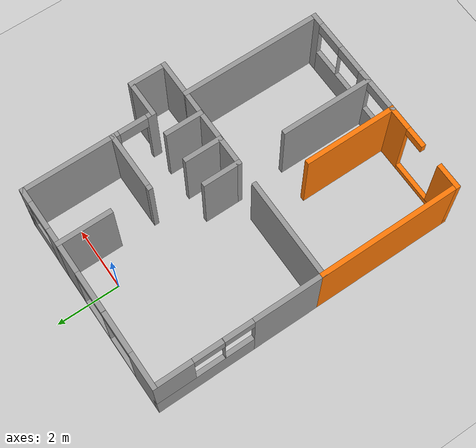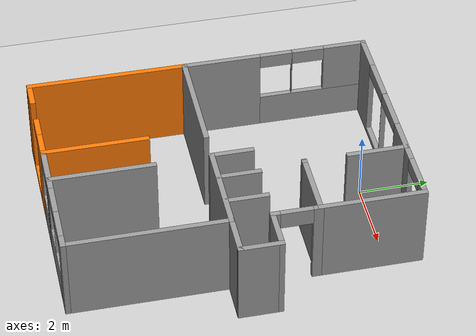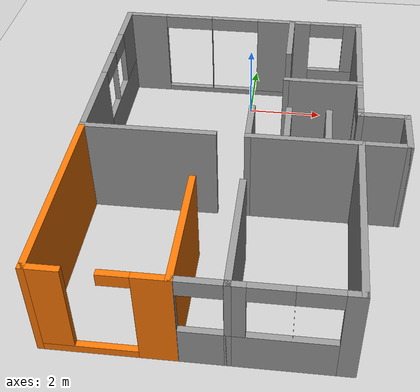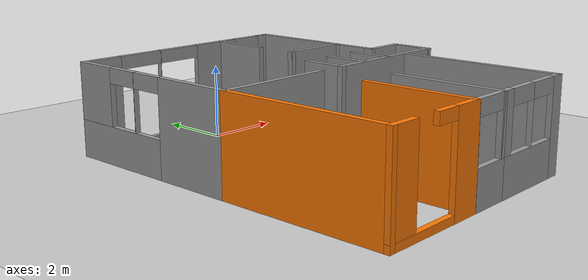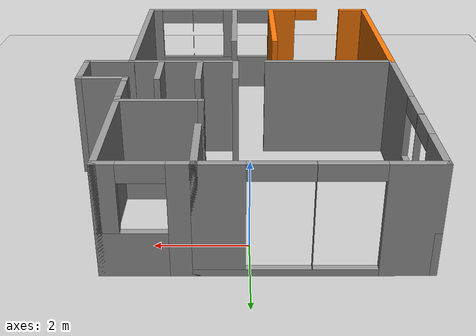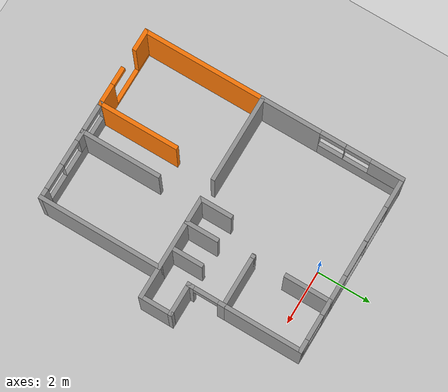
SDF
<sdf version="1.6">
 <world name="default">
  <light name="sun" type="directional">
   <pose>0 0 10 0 -0 0</pose>
   <diffuse>0.8 0.8 0.8 1</diffuse>
   <specular>0.1 0.1 0.1 1</specular>
   <attenuation>
    <range>1000</range>
    <constant>0.9</constant>
    <linear>0.01</linear>
    <quadratic>0.001</quadratic>
   </attenuation>
   <direction>-0.5 0.5 -1</direction>
  </light>
  <model name="ground_plane">
   <static>1</static>
   <link name="link">
    <collision name="collision">
     <geometry><plane><normal>0 0 1</normal><size>100 100</size></plane></geometry>
     <surface><friction><ode><mu>100</mu><mu2>50</mu2></ode></friction></surface>
    </collision>
    <visual name="visual">
     <cast_shadows>0</cast_shadows>
     <geometry><plane><normal>0 0 1</normal><size>100 100</size></plane></geometry>
     <material>
      <script><uri>file://media/materials/scripts/gazebo.material</uri><name>Gazebo/Grey</name></script>
     </material>
    </visual>
   </link>
  </model>
  <gravity>0 0 -9.8</gravity>
  <magnetic_field>6e-06 2.3e-05 -4.2e-05</magnetic_field>
  <atmosphere type="adiabatic"/>
  <physics name="default_physics" default="0" type="ode">
   <max_step_size>0.001</max_step_size>
   <real_time_factor>1</real_time_factor>
   <real_time_update_rate>1000</real_time_update_rate>
  </physics>
  <scene><ambient>0.4 0.4 0.4 1</ambient><background>0.7 0.7 0.7 1</background><shadows>1</shadows></scene>
  <spherical_coordinates>
   <surface_model>EARTH_WGS84</surface_model>
   <latitude_deg>0</latitude_deg>
   <longitude_deg>0</longitude_deg>
   <elevation>0</elevation>
   <heading_deg>0</heading_deg>
  </spherical_coordinates>
  <model name="Berkach">
   <pose>0.204803 -3.91895 0 0 -0 0</pose>
   <link name="Wall_0">
    <collision name="Wall_0_Collision">
     <geometry><box><size>4.6 0.15 2.5</size></box></geometry>
     <pose>0 0 1.25 0 -0 0</pose>
    </collision>
    <visual name="Wall_0_Visual">
     <pose>0 0 1.25 0 -0 0</pose>
     <geometry><box><size>4.6 0.15 2.5</size></box></geometry>
     <material>
      <script><uri>file://media/materials/scripts/gazebo.material</uri><name>Gazebo/Grey</name></script>
      <ambient>1 1 1 1</ambient>
     </material>
    </visual>
    <pose>2.7 -2.625 0 0 0 -1.5708</pose>
   </link>
   <link name="Wall_11">
    <collision name="Wall_11_Collision">
     <geometry><box><size>3 0.15 2.5</size></box></geometry>
     <pose>0 0 1.25 0 -0 0</pose>
    </collision>
    <visual name="Wall_11_Visual">
     <pose>0 0 1.25 0 -0 0</pose>
     <geometry><box><size>3 0.15 2.5</size></box></geometry>
     <material>
      <script><uri>file://media/materials/scripts/gazebo.material</uri><name>Gazebo/Grey</name></script>
      <ambient>0.996078 0.47451 0.0196078 1</ambient>
     </material>
    </visual>
    <pose>-0.95 -3.425 0 0 0 -1.5708</pose>
   </link>
   <link name="Wall_12">
    <pose>-2.375 -4.85 0 0 -0 3.14159</pose>
    <visual name="Wall_12_Visual_0">
     <pose>-1.0895 0 1.25 0 -0 0</pose>
     <geometry><box><size>0.820991 0.15 2.5</size></box></geometry>
     <material>
      <script><uri>file://media/materials/scripts/gazebo.material</uri><name>Gazebo/Grey</name></script>
      <ambient>0.996078 0.47451 0.0196078 1</ambient>
     </material>
    </visual>
    <collision name="Wall_12_Collision_0">
     <geometry><box><size>0.820991 0.15 2.5</size></box></geometry>
     <pose>-1.0895 0 1.25 0 -0 0</pose>
    </collision>
    <visual name="Wall_12_Visual_1">
     <pose>0.410495 0 0.1 0 -0 0</pose>
     <geometry><box><size>2.17901 0.15 0.2</size></box></geometry>
     <material>
      <script><uri>file://media/materials/scripts/gazebo.material</uri><name>Gazebo/Grey</name></script>
      <ambient>0.996078 0.47451 0.0196078 1</ambient>
     </material>
    </visual>
    <collision name="Wall_12_Collision_1">
     <geometry><box><size>2.17901 0.15 0.2</size></box></geometry>
     <pose>0.410495 0 0.1 0 -0 0</pose>
    </collision>
    <visual name="Wall_12_Visual_2">
     <pose>1.08284 0 1.35 0 -0 0</pose>
     <geometry><box><size>0.834315 0.15 2.3</size></box></geometry>
     <material>
      <script><uri>file://media/materials/scripts/gazebo.material</uri><name>Gazebo/Grey</name></script>
      <ambient>0.996078 0.47451 0.0196078 1</ambient>
     </material>
    </visual>
    <collision name="Wall_12_Collision_2">
     <geometry><box><size>0.834315 0.15 2.3</size></box></geometry>
     <pose>1.08284 0 1.35 0 -0 0</pose>
    </collision>
    <visual name="Wall_12_Visual_3">
     <pose>-0.344162 0 2.35 0 -0 0</pose>
     <geometry><box><size>0.669694 0.15 0.3</size></box></geometry>
     <material>
      <script><uri>file://media/materials/scripts/gazebo.material</uri><name>Gazebo/Grey</name></script>
      <ambient>0.996078 0.47451 0.0196078 1</ambient>
     </material>
    </visual>
    <collision name="Wall_12_Collision_3">
     <geometry><box><size>0.669694 0.15 0.3</size></box></geometry>
     <pose>-0.344162 0 2.35 0 -0 0</pose>
    </collision>
   </link>
   <link name="Wall_13">
    <collision name="Wall_13_Collision">
     <geometry><box><size>4.6 0.15 2.5</size></box></geometry>
     <pose>0 0 1.25 0 -0 0</pose>
    </collision>
    <visual name="Wall_13_Visual">
     <pose>0 0 1.25 0 -0 0</pose>
     <geometry><box><size>4.6 0.15 2.5</size></box></geometry>
     <material>
      <script><uri>file://media/materials/scripts/gazebo.material</uri><name>Gazebo/Grey</name></script>
      <ambient>0.996078 0.47451 0.0196078 1</ambient>
     </material>
    </visual>
    <pose>-3.8 -2.625 0 0 -0 1.5708</pose>
   </link>
   <link name="Wall_15">
    <collision name="Wall_15_Collision">
     <geometry><box><size>3.25 0.15 2.5</size></box></geometry>
     <pose>0 0 1.25 0 -0 0</pose>
    </collision>
    <visual name="Wall_15_Visual">
     <pose>0 0 1.25 0 -0 0</pose>
     <geometry><box><size>3.25 0.15 2.5</size></box></geometry>
     <material>
      <script><uri>file://media/materials/scripts/gazebo.material</uri><name>Gazebo/Grey</name></script>
      <ambient>1 1 1 1</ambient>
     </material>
    </visual>
    <pose>-2.25 -0.4 0 0 -0 0</pose>
   </link>
   <link name="Wall_17">
    <collision name="Wall_17_Collision">
     <geometry><box><size>1.25 0.15 2.5</size></box></geometry>
     <pose>0 0 1.25 0 -0 0</pose>
    </collision>
    <visual name="Wall_17_Visual">
     <pose>0 0 1.25 0 -0 0</pose>
     <geometry><box><size>1.25 0.15 2.5</size></box></geometry>
     <material>
      <script><uri>file://media/materials/scripts/gazebo.material</uri><name>Gazebo/Grey</name></script>
      <ambient>1 1 1 1</ambient>
     </material>
    </visual>
    <pose>0.1 0.15 0 0 -0 1.5708</pose>
   </link>
   <link name="Wall_19">
    <pose>-3.8 2.225 0 0 -0 1.5708</pose>
    <visual name="Wall_19_Visual_0">
     <pose>-1.56095 0 1.25 0 -0 0</pose>
     <geometry><box><size>2.27809 0.15 2.5</size></box></geometry>
     <material>
      <script><uri>file://media/materials/scripts/gazebo.material</uri><name>Gazebo/Grey</name></script>
      <ambient>1 1 1 1</ambient>
     </material>
    </visual>
    <collision name="Wall_19_Collision_0">
     <geometry><box><size>2.27809 0.15 2.5</size></box></geometry>
     <pose>-1.56095 0 1.25 0 -0 0</pose>
    </collision>
    <visual name="Wall_19_Visual_1">
     <pose>1.13905 0 0.5 0 -0 0</pose>
     <geometry><box><size>3.12191 0.15 1</size></box></geometry>
     <material>
      <script><uri>file://media/materials/scripts/gazebo.material</uri><name>Gazebo/Grey</name></script>
      <ambient>1 1 1 1</ambient>
     </material>
    </visual>
    <collision name="Wall_19_Collision_1">
     <geometry><box><size>3.12191 0.15 1</size></box></geometry>
     <pose>1.13905 0 0.5 0 -0 0</pose>
    </collision>
    <visual name="Wall_19_Visual_2">
     <pose>0.51258 0 1.75 0 -0 0</pose>
     <geometry><box><size>0.008975 0.15 1.5</size></box></geometry>
     <material>
      <script><uri>file://media/materials/scripts/gazebo.material</uri><name>Gazebo/Grey</name></script>
      <ambient>1 1 1 1</ambient>
     </material>
    </visual>
    <collision name="Wall_19_Collision_2">
     <geometry><box><size>0.008975 0.15 1.5</size></box></geometry>
     <pose>0.51258 0 1.75 0 -0 0</pose>
    </collision>
    <visual name="Wall_19_Visual_3">
     <pose>2.07353 0 1.75 0 -0 0</pose>
     <geometry><box><size>1.25293 0.15 1.5</size></box></geometry>
     <material>
      <script><uri>file://media/materials/scripts/gazebo.material</uri><name>Gazebo/Grey</name></script>
      <ambient>1 1 1 1</ambient>
     </material>
    </visual>
    <collision name="Wall_19_Collision_3">
     <geometry><box><size>1.25293 0.15 1.5</size></box></geometry>
     <pose>2.07353 0 1.75 0 -0 0</pose>
    </collision>
    <visual name="Wall_19_Visual_4">
     <pose>0.043092 0 2.3 0 -0 0</pose>
     <geometry><box><size>0.93 0.15 0.4</size></box></geometry>
     <material>
      <script><uri>file://media/materials/scripts/gazebo.material</uri><name>Gazebo/Grey</name></script>
      <ambient>1 1 1 1</ambient>
     </material>
    </visual>
    <collision name="Wall_19_Collision_4">
     <geometry><box><size>0.93 0.15 0.4</size></box></geometry>
     <pose>0.043092 0 2.3 0 -0 0</pose>
    </collision>
    <visual name="Wall_19_Visual_5">
     <pose>0.982067 0 2.3 0 -0 0</pose>
     <geometry><box><size>0.93 0.15 0.4</size></box></geometry>
     <material>
      <script><uri>file://media/materials/scripts/gazebo.material</uri><name>Gazebo/Grey</name></script>
      <ambient>1 1 1 1</ambient>
     </material>
    </visual>
    <collision name="Wall_19_Collision_5">
     <geometry><box><size>0.93 0.15 0.4</size></box></geometry>
     <pose>0.982067 0 2.3 0 -0 0</pose>
    </collision>
   </link>
   <link name="Wall_21">
    <pose>-1.475 4.85 0 0 -0 0</pose>
    <visual name="Wall_21_Visual_0">
     <pose>-1.82442 0 1.25 0 -0 0</pose>
     <geometry><box><size>1.15115 0.15 2.5</size></box></geometry>
     <material>
      <script><uri>file://media/materials/scripts/gazebo.material</uri><name>Gazebo/Grey</name></script>
      <ambient>1 1 1 1</ambient>
     </material>
    </visual>
    <collision name="Wall_21_Collision_0">
     <geometry><box><size>1.15115 0.15 2.5</size></box></geometry>
     <pose>-1.82442 0 1.25 0 -0 0</pose>
    </collision>
    <visual name="Wall_21_Visual_1">
     <pose>0.575577 0 0.075 0 -0 0</pose>
     <geometry><box><size>3.64885 0.15 0.15</size></box></geometry>
     <material>
      <script><uri>file://media/materials/scripts/gazebo.material</uri><name>Gazebo/Grey</name></script>
      <ambient>1 1 1 1</ambient>
     </material>
    </visual>
    <collision name="Wall_21_Collision_1">
     <geometry><box><size>3.64885 0.15 0.15</size></box></geometry>
     <pose>0.575577 0 0.075 0 -0 0</pose>
    </collision>
    <visual name="Wall_21_Visual_2">
     <pose>0.055791 0 1.325 0 -0 0</pose>
     <geometry><box><size>0.009275 0.15 2.35</size></box></geometry>
     <material>
      <script><uri>file://media/materials/scripts/gazebo.material</uri><name>Gazebo/Grey</name></script>
      <ambient>1 1 1 1</ambient>
     </material>
    </visual>
    <collision name="Wall_21_Collision_2">
     <geometry><box><size>0.009275 0.15 2.35</size></box></geometry>
     <pose>0.055791 0 1.325 0 -0 0</pose>
    </collision>
    <visual name="Wall_21_Visual_3">
     <pose>1.88021 0 1.325 0 -0 0</pose>
     <geometry><box><size>1.03957 0.15 2.35</size></box></geometry>
     <material>
      <script><uri>file://media/materials/scripts/gazebo.material</uri><name>Gazebo/Grey</name></script>
      <ambient>1 1 1 1</ambient>
     </material>
    </visual>
    <collision name="Wall_21_Collision_3">
     <geometry><box><size>1.03957 0.15 2.35</size></box></geometry>
     <pose>1.88021 0 1.325 0 -0 0</pose>
    </collision>
    <visual name="Wall_21_Visual_4">
     <pose>-0.598846 0 2.325 0 -0 0</pose>
     <geometry><box><size>1.3 0.15 0.35</size></box></geometry>
     <material>
      <script><uri>file://media/materials/scripts/gazebo.material</uri><name>Gazebo/Grey</name></script>
      <ambient>1 1 1 1</ambient>
     </material>
    </visual>
    <collision name="Wall_21_Collision_4">
     <geometry><box><size>1.3 0.15 0.35</size></box></geometry>
     <pose>-0.598846 0 2.325 0 -0 0</pose>
    </collision>
    <visual name="Wall_21_Visual_5">
     <pose>0.710429 0 2.325 0 -0 0</pose>
     <geometry><box><size>1.3 0.15 0.35</size></box></geometry>
     <material>
      <script><uri>file://media/materials/scripts/gazebo.material</uri><name>Gazebo/Grey</name></script>
      <ambient>1 1 1 1</ambient>
     </material>
    </visual>
    <collision name="Wall_21_Collision_5">
     <geometry><box><size>1.3 0.15 0.35</size></box></geometry>
     <pose>0.710429 0 2.325 0 -0 0</pose>
    </collision>
   </link>
   <link name="Wall_24">
    <collision name="Wall_24_Collision">
     <geometry><box><size>0.15 0.15 2.5</size></box></geometry>
     <pose>0 0 1.25 0 -0 0</pose>
    </collision>
    <visual name="Wall_24_Visual">
     <pose>0 0 1.25 0 -0 0</pose>
     <geometry><box><size>0.15 0.15 2.5</size></box></geometry>
     <material>
      <script><uri>file://media/materials/scripts/gazebo.material</uri><name>Gazebo/Grey</name></script>
      <ambient>1 1 1 1</ambient>
     </material>
    </visual>
    <pose>0.85 2 0 0 -0 0</pose>
   </link>
   <link name="Wall_25">
    <collision name="Wall_25_Collision">
     <geometry><box><size>2 0.15 2.5</size></box></geometry>
     <pose>0 0 1.25 0 -0 0</pose>
    </collision>
    <visual name="Wall_25_Visual">
     <pose>0 0 1.25 0 -0 0</pose>
     <geometry><box><size>2 0.15 2.5</size></box></geometry>
     <material>
      <script><uri>file://media/materials/scripts/gazebo.material</uri><name>Gazebo/Grey</name></script>
      <ambient>1 1 1 1</ambient>
     </material>
    </visual>
    <pose>1.775 2 0 0 -0 0</pose>
   </link>
   <link name="Wall_27">
    <collision name="Wall_27_Collision">
     <geometry><box><size>1.75 0.15 2.5</size></box></geometry>
     <pose>0 0 1.25 0 -0 0</pose>
    </collision>
    <visual name="Wall_27_Visual">
     <pose>0 0 1.25 0 -0 0</pose>
     <geometry><box><size>1.75 0.15 2.5</size></box></geometry>
     <material>
      <script><uri>file://media/materials/scripts/gazebo.material</uri><name>Gazebo/Grey</name></script>
      <ambient>1 1 1 1</ambient>
     </material>
    </visual>
    <pose>0.85 4.05 0 0 0 -1.5708</pose>
   </link>
   <link name="Wall_29">
    <pose>1.775 4.85 0 0 -0 0</pose>
    <visual name="Wall_29_Visual_0">
     <pose>-0.706629 0 1.25 0 -0 0</pose>
     <geometry><box><size>0.586741 0.15 2.5</size></box></geometry>
     <material>
      <script><uri>file://media/materials/scripts/gazebo.material</uri><name>Gazebo/Grey</name></script>
      <ambient>1 1 1 1</ambient>
     </material>
    </visual>
    <collision name="Wall_29_Collision_0">
     <geometry><box><size>0.586741 0.15 2.5</size></box></geometry>
     <pose>-0.706629 0 1.25 0 -0 0</pose>
    </collision>
    <visual name="Wall_29_Visual_1">
     <pose>0.293371 0 0.5 0 -0 0</pose>
     <geometry><box><size>1.41326 0.15 1</size></box></geometry>
     <material>
      <script><uri>file://media/materials/scripts/gazebo.material</uri><name>Gazebo/Grey</name></script>
      <ambient>1 1 1 1</ambient>
     </material>
    </visual>
    <collision name="Wall_29_Collision_1">
     <geometry><box><size>1.41326 0.15 1</size></box></geometry>
     <pose>0.293371 0 0.5 0 -0 0</pose>
    </collision>
    <visual name="Wall_29_Visual_2">
     <pose>0.758371 0 1.75 0 -0 0</pose>
     <geometry><box><size>0.483259 0.15 1.5</size></box></geometry>
     <material>
      <script><uri>file://media/materials/scripts/gazebo.material</uri><name>Gazebo/Grey</name></script>
      <ambient>1 1 1 1</ambient>
     </material>
    </visual>
    <collision name="Wall_29_Collision_2">
     <geometry><box><size>0.483259 0.15 1.5</size></box></geometry>
     <pose>0.758371 0 1.75 0 -0 0</pose>
    </collision>
    <visual name="Wall_29_Visual_3">
     <pose>0.051741 0 2.3 0 -0 0</pose>
     <geometry><box><size>0.93 0.15 0.4</size></box></geometry>
     <material>
      <script><uri>file://media/materials/scripts/gazebo.material</uri><name>Gazebo/Grey</name></script>
      <ambient>1 1 1 1</ambient>
     </material>
    </visual>
    <collision name="Wall_29_Collision_3">
     <geometry><box><size>0.93 0.15 0.4</size></box></geometry>
     <pose>0.051741 0 2.3 0 -0 0</pose>
    </collision>
   </link>
   <link name="Wall_3">
    <pose>1.425 -4.85 0 0 -0 3.14159</pose>
    <visual name="Wall_3_Visual_0">
     <pose>-1.14533 0 1.25 0 -0 0</pose>
     <geometry><box><size>0.409344 0.15 2.5</size></box></geometry>
     <material>
      <script><uri>file://media/materials/scripts/gazebo.material</uri><name>Gazebo/Grey</name></script>
      <ambient>1 1 1 1</ambient>
     </material>
    </visual>
    <collision name="Wall_3_Collision_0">
     <geometry><box><size>0.409344 0.15 2.5</size></box></geometry>
     <pose>-1.14533 0 1.25 0 -0 0</pose>
    </collision>
    <visual name="Wall_3_Visual_1">
     <pose>0.204672 0 0.5 0 -0 0</pose>
     <geometry><box><size>2.29066 0.15 1</size></box></geometry>
     <material>
      <script><uri>file://media/materials/scripts/gazebo.material</uri><name>Gazebo/Grey</name></script>
      <ambient>1 1 1 1</ambient>
     </material>
    </visual>
    <collision name="Wall_3_Collision_1">
     <geometry><box><size>2.29066 0.15 1</size></box></geometry>
     <pose>0.204672 0 0.5 0 -0 0</pose>
    </collision>
    <visual name="Wall_3_Visual_2">
     <pose>-0.010192 0 1.75 0 -0 0</pose>
     <geometry><box><size>0.000928 0.15 1.5</size></box></geometry>
     <material>
      <script><uri>file://media/materials/scripts/gazebo.material</uri><name>Gazebo/Grey</name></script>
      <ambient>1 1 1 1</ambient>
     </material>
    </visual>
    <collision name="Wall_3_Collision_2">
     <geometry><box><size>0.000928 0.15 1.5</size></box></geometry>
     <pose>-0.010192 0 1.75 0 -0 0</pose>
    </collision>
    <visual name="Wall_3_Visual_3">
     <pose>1.13514 0 1.75 0 -0 0</pose>
     <geometry><box><size>0.429728 0.15 1.5</size></box></geometry>
     <material>
      <script><uri>file://media/materials/scripts/gazebo.material</uri><name>Gazebo/Grey</name></script>
      <ambient>1 1 1 1</ambient>
     </material>
    </visual>
    <collision name="Wall_3_Collision_3">
     <geometry><box><size>0.429728 0.15 1.5</size></box></geometry>
     <pose>1.13514 0 1.75 0 -0 0</pose>
    </collision>
    <visual name="Wall_3_Visual_4">
     <pose>-0.475656 0 2.3 0 -0 0</pose>
     <geometry><box><size>0.93 0.15 0.4</size></box></geometry>
     <material>
      <script><uri>file://media/materials/scripts/gazebo.material</uri><name>Gazebo/Grey</name></script>
      <ambient>1 1 1 1</ambient>
     </material>
    </visual>
    <collision name="Wall_3_Collision_4">
     <geometry><box><size>0.93 0.15 0.4</size></box></geometry>
     <pose>-0.475656 0 2.3 0 -0 0</pose>
    </collision>
    <visual name="Wall_3_Visual_5">
     <pose>0.455272 0 2.3 0 -0 0</pose>
     <geometry><box><size>0.93 0.15 0.4</size></box></geometry>
     <material>
      <script><uri>file://media/materials/scripts/gazebo.material</uri><name>Gazebo/Grey</name></script>
      <ambient>1 1 1 1</ambient>
     </material>
    </visual>
    <collision name="Wall_3_Collision_5">
     <geometry><box><size>0.93 0.15 0.4</size></box></geometry>
     <pose>0.455272 0 2.3 0 -0 0</pose>
    </collision>
   </link>
   <link name="Wall_30">
    <collision name="Wall_30_Collision">
     <geometry><box><size>3 0.15 2.5</size></box></geometry>
     <pose>0 0 1.25 0 -0 0</pose>
    </collision>
    <visual name="Wall_30_Visual">
     <pose>0 0 1.25 0 -0 0</pose>
     <geometry><box><size>3 0.15 2.5</size></box></geometry>
     <material>
      <script><uri>file://media/materials/scripts/gazebo.material</uri><name>Gazebo/Grey</name></script>
      <ambient>1 1 1 1</ambient>
     </material>
    </visual>
    <pose>2.7 3.425 0 0 0 -1.5708</pose>
   </link>
   <link name="Wall_34">
    <pose>-0.4 -4.85 0 0 -0 0</pose>
    <visual name="Wall_34_Visual_0">
     <pose>-0.547248 0 1.25 0 -0 0</pose>
     <geometry><box><size>0.155503 0.15 2.5</size></box></geometry>
     <material>
      <script><uri>file://media/materials/scripts/gazebo.material</uri><name>Gazebo/Grey</name></script>
      <ambient>1 1 1 1</ambient>
     </material>
    </visual>
    <collision name="Wall_34_Collision_0">
     <geometry><box><size>0.155503 0.15 2.5</size></box></geometry>
     <pose>-0.547248 0 1.25 0 -0 0</pose>
    </collision>
    <visual name="Wall_34_Visual_1">
     <pose>0.077752 0 0.5 0 -0 0</pose>
     <geometry><box><size>1.0945 0.15 1</size></box></geometry>
     <material>
      <script><uri>file://media/materials/scripts/gazebo.material</uri><name>Gazebo/Grey</name></script>
      <ambient>1 1 1 1</ambient>
     </material>
    </visual>
    <collision name="Wall_34_Collision_1">
     <geometry><box><size>1.0945 0.15 1</size></box></geometry>
     <pose>0.077752 0 0.5 0 -0 0</pose>
    </collision>
    <visual name="Wall_34_Visual_2">
     <pose>0.552752 0 1.75 0 -0 0</pose>
     <geometry><box><size>0.144497 0.15 1.5</size></box></geometry>
     <material>
      <script><uri>file://media/materials/scripts/gazebo.material</uri><name>Gazebo/Grey</name></script>
      <ambient>1 1 1 1</ambient>
     </material>
    </visual>
    <collision name="Wall_34_Collision_2">
     <geometry><box><size>0.144497 0.15 1.5</size></box></geometry>
     <pose>0.552752 0 1.75 0 -0 0</pose>
    </collision>
    <visual name="Wall_34_Visual_3">
     <pose>0.005503 0 2.3 0 -0 0</pose>
     <geometry><box><size>0.95 0.15 0.4</size></box></geometry>
     <material>
      <script><uri>file://media/materials/scripts/gazebo.material</uri><name>Gazebo/Grey</name></script>
      <ambient>1 1 1 1</ambient>
     </material>
    </visual>
    <collision name="Wall_34_Collision_3">
     <geometry><box><size>0.95 0.15 0.4</size></box></geometry>
     <pose>0.005503 0 2.3 0 -0 0</pose>
    </collision>
   </link>
   <link name="Wall_36">
    <collision name="Wall_36_Collision">
     <geometry><box><size>1.25 0.15 2.5</size></box></geometry>
     <pose>0 0 1.25 0 -0 0</pose>
    </collision>
    <visual name="Wall_36_Visual">
     <pose>0 0 1.25 0 -0 0</pose>
     <geometry><box><size>1.25 0.15 2.5</size></box></geometry>
     <material>
      <script><uri>file://media/materials/scripts/gazebo.material</uri><name>Gazebo/Grey</name></script>
      <ambient>1 1 1 1</ambient>
     </material>
    </visual>
    <pose>0.987218 0.166389 0 0 0 -1.5708</pose>
   </link>
   <link name="Wall_38">
    <collision name="Wall_38_Collision">
     <geometry><box><size>1.25 0.15 2.5</size></box></geometry>
     <pose>0 0 1.25 0 -0 0</pose>
    </collision>
    <visual name="Wall_38_Visual">
     <pose>0 0 1.25 0 -0 0</pose>
     <geometry><box><size>1.25 0.15 2.5</size></box></geometry>
     <material>
      <script><uri>file://media/materials/scripts/gazebo.material</uri><name>Gazebo/Grey</name></script>
      <ambient>1 1 1 1</ambient>
     </material>
    </visual>
    <pose>1.94917 0.164515 0 0 -0 1.5708</pose>
   </link>
   <link name="Wall_40">
    <collision name="Wall_40_Collision">
     <geometry><box><size>1.25 0.15 2.5</size></box></geometry>
     <pose>0 0 1.25 0 -0 0</pose>
    </collision>
    <visual name="Wall_40_Visual">
     <pose>0 0 1.25 0 -0 0</pose>
     <geometry><box><size>1.25 0.15 2.5</size></box></geometry>
     <material>
      <script><uri>file://media/materials/scripts/gazebo.material</uri><name>Gazebo/Grey</name></script>
      <ambient>1 1 1 1</ambient>
     </material>
    </visual>
    <pose>3.25 -0.4 0 0 -0 0</pose>
   </link>
   <link name="Wall_41">
    <collision name="Wall_41_Collision">
     <geometry><box><size>1.25 0.15 2.5</size></box></geometry>
     <pose>0 0 1.25 0 -0 0</pose>
    </collision>
    <visual name="Wall_41_Visual">
     <pose>0 0 1.25 0 -0 0</pose>
     <geometry><box><size>1.25 0.15 2.5</size></box></geometry>
     <material>
      <script><uri>file://media/materials/scripts/gazebo.material</uri><name>Gazebo/Grey</name></script>
      <ambient>1 1 1 1</ambient>
     </material>
    </visual>
    <pose>3.8 0.15 0 0 -0 1.5708</pose>
   </link>
   <link name="Wall_43">
    <collision name="Wall_43_Collision">
     <geometry><box><size>1.25 0.15 2.5</size></box></geometry>
     <pose>0 0 1.25 0 -0 0</pose>
    </collision>
    <visual name="Wall_43_Visual">
     <pose>0 0 1.25 0 -0 0</pose>
     <geometry><box><size>1.25 0.15 2.5</size></box></geometry>
     <material>
      <script><uri>file://media/materials/scripts/gazebo.material</uri><name>Gazebo/Grey</name></script>
      <ambient>1 1 1 1</ambient>
     </material>
    </visual>
    <pose>3.25 0.7 0 0 -0 3.14159</pose>
   </link>
   <link name="Wall_45">
    <pose>2.7 1.35 0 0 0 -1.5708</pose>
    <visual name="Wall_45_Visual_0">
     <pose>-0.590284 0 1.25 0 -0 0</pose>
     <geometry><box><size>0.269433 0.15 2.5</size></box></geometry>
     <material>
      <script><uri>file://media/materials/scripts/gazebo.material</uri><name>Gazebo/Grey</name></script>
      <ambient>1 1 1 1</ambient>
     </material>
    </visual>
    <collision name="Wall_45_Collision_0">
     <geometry><box><size>0.269433 0.15 2.5</size></box></geometry>
     <pose>-0.590284 0 1.25 0 -0 0</pose>
    </collision>
    <visual name="Wall_45_Visual_1">
     <pose>0.584716 0 1.25 0 -0 0</pose>
     <geometry><box><size>0.280567 0.15 2.5</size></box></geometry>
     <material>
      <script><uri>file://media/materials/scripts/gazebo.material</uri><name>Gazebo/Grey</name></script>
      <ambient>1 1 1 1</ambient>
     </material>
    </visual>
    <collision name="Wall_45_Collision_1">
     <geometry><box><size>0.280567 0.15 2.5</size></box></geometry>
     <pose>0.584716 0 1.25 0 -0 0</pose>
    </collision>
    <visual name="Wall_45_Visual_2">
     <pose>-0.005567 0 2.25 0 -0 0</pose>
     <geometry><box><size>0.9 0.15 0.5</size></box></geometry>
     <material>
      <script><uri>file://media/materials/scripts/gazebo.material</uri><name>Gazebo/Grey</name></script>
      <ambient>1 1 1 1</ambient>
     </material>
    </visual>
    <collision name="Wall_45_Collision_2">
     <geometry><box><size>0.9 0.15 0.5</size></box></geometry>
     <pose>-0.005567 0 2.25 0 -0 0</pose>
    </collision>
   </link>
   <link name="Wall_6">
    <collision name="Wall_6_Collision">
     <geometry><box><size>3 0.15 2.5</size></box></geometry>
     <pose>0 0 1.25 0 -0 0</pose>
    </collision>
    <visual name="Wall_6_Visual">
     <pose>0 0 1.25 0 -0 0</pose>
     <geometry><box><size>3 0.15 2.5</size></box></geometry>
     <material>
      <script><uri>file://media/materials/scripts/gazebo.material</uri><name>Gazebo/Grey</name></script>
      <ambient>1 1 1 1</ambient>
     </material>
    </visual>
    <pose>0.15 -3.425 0 0 -0 1.5708</pose>
   </link>
   <link name="Wall_8">
    <collision name="Wall_8_Collision">
     <geometry><box><size>2.75 0.15 2.5</size></box></geometry>
     <pose>0 0 1.25 0 -0 0</pose>
    </collision>
    <visual name="Wall_8_Visual">
     <pose>0 0 1.25 0 -0 0</pose>
     <geometry><box><size>2.75 0.15 2.5</size></box></geometry>
     <material>
      <script><uri>file://media/materials/scripts/gazebo.material</uri><name>Gazebo/Grey</name></script>
      <ambient>1 1 1 1</ambient>
     </material>
    </visual>
    <pose>1.4 -0.4 0 0 -0 3.14159</pose>
   </link>
   <static>1</static>
  </model>
 </world>
</sdf>
